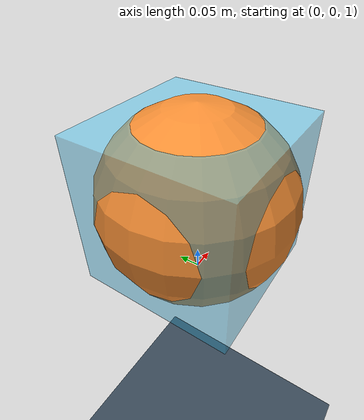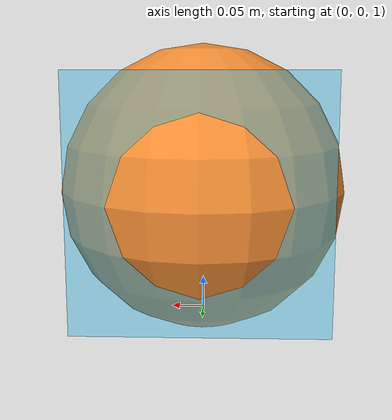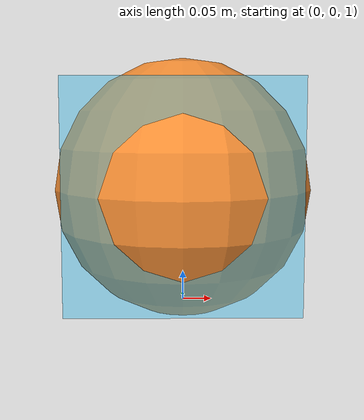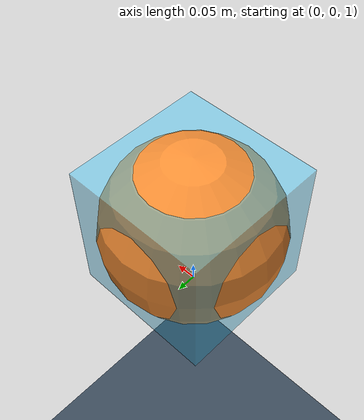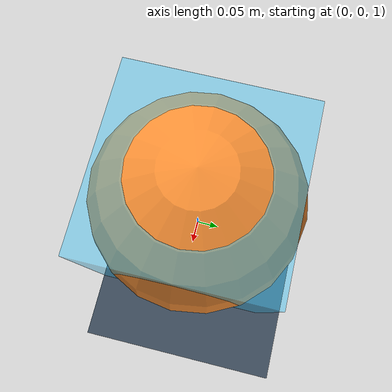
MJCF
<mujoco model="mocap and equality editing">
  <option timestep="0.002" gravity="0 0 -9.81"/>
  <statistic center="0 0 1" extent="1.5"/>
  <visual>
    <global azimuth="135" elevation="-22" fovy="42"/>
  </visual>
  <worldbody>
    <light directional="true" pos="0 -3 5" dir="0 .4 -1"/>
    <geom name="floor" type="plane" size="1.5 1.5 .05" rgba=".22 .28 .34 1"/>
    <body name="mocap_target" mocap="true" pos="0 0 1.2">
      <geom type="box" size=".18 .18 .18" rgba=".2 .75 .95 .45" contype="0" conaffinity="0"/>
    </body>
    <body name="payload" pos="0 0 1.2">
      <freejoint/>
      <geom type="sphere" size=".22" mass="2" rgba=".95 .55 .2 1"/>
    </body>
  </worldbody>
  <equality>
    <weld name="mocap_weld" body1="mocap_target" body2="payload"/>
  </equality>
</mujoco>
